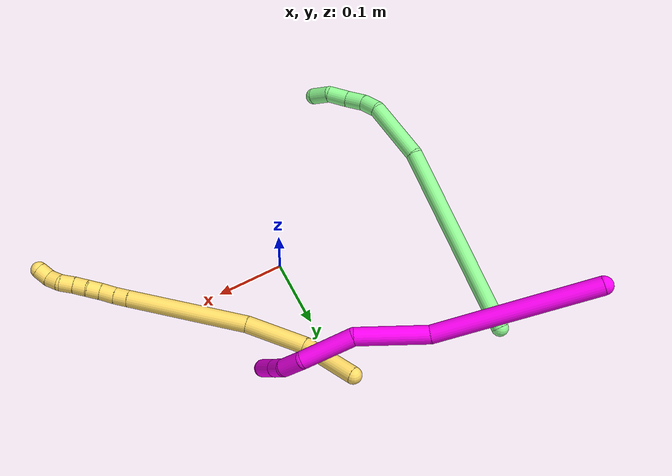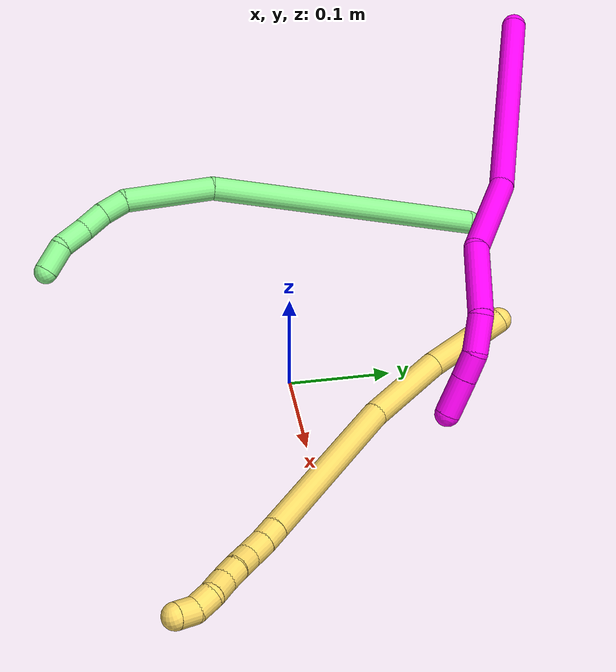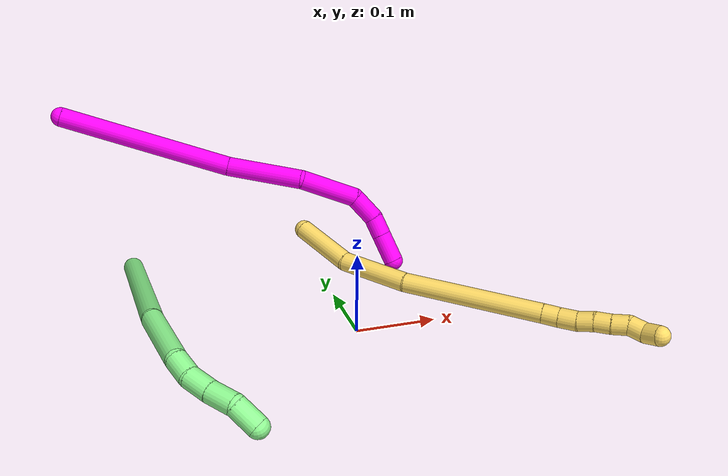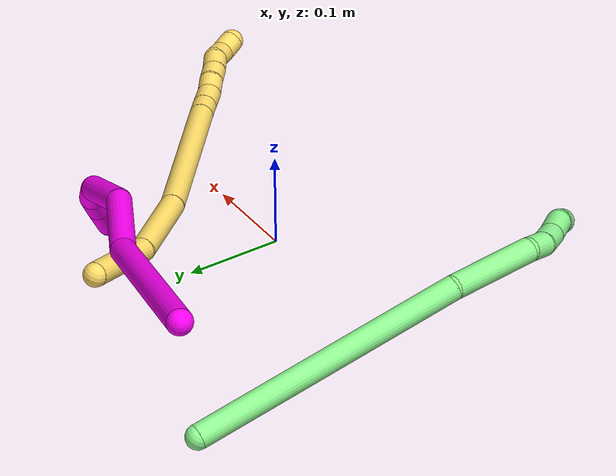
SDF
<sdf version="1.7">
 <world name="default">
  <model name="photoneo_s_sensor">
   <static>1</static>
   <pose>0 0 2 1.57079 1.57079 3.14159</pose>
   <link name="link">
    <inertial><mass>0.1</mass></inertial>
    <sensor name="sensor" type="depth">
     <update_rate>30</update_rate>
     <camera>
      <horizontal_fov>1.22</horizontal_fov>
      <image><width>1920</width><height>1200</height><format>B8G8R8</format></image>
      <clip><near>0.1</near><far>4</far></clip>
      <depth_camera><output>points</output></depth_camera>
     </camera>
     <plugin name="camera_plugin" filename="libgazebo_ros_depth_camera.so">
      <baseline>0.2</baseline>
      <alwaysOn>1</alwaysOn>
      <updateRate>0.0</updateRate>
      <cameraName>camera_ir</cameraName>
      <imageTopicName>/camera/color/image_raw</imageTopicName>
      <cameraInfoTopicName>/camera/color/camera_info</cameraInfoTopicName>
      <depthImageTopicName>/camera/depth/image_raw</depthImageTopicName>
      <depthImageCameraInfoTopicName>/camera/depth/camera_info</depthImageCameraInfoTopicName>
      <pointCloudTopicName>/camera/depth/points</pointCloudTopicName>
      <frameName>fr_optical</frameName>
      <pointCloudCutoff>0.1</pointCloudCutoff>
      <pointCloudCutoffMax>2.0</pointCloudCutoffMax>
      <distortionK1>0</distortionK1>
      <distortionK2>0</distortionK2>
      <distortionK3>0</distortionK3>
      <distortionT1>0</distortionT1>
      <distortionT2>0</distortionT2>
      <CxPrime>0</CxPrime>
      <Cx>0</Cx>
      <Cy>0</Cy>
      <focalLength>0</focalLength>
      <hackBaseline>0</hackBaseline>
     </plugin>
    </sensor>
   </link>
  </model>
  <model name="bin">
   <static>1</static>
   <link name="bottom">
    <collision name="collision-bottom">
     <pose>0 0 -0.01 0 -0 0</pose>
     <geometry><box><size>0.8 0.6 0.02</size></box></geometry>
     <surface>
      <friction><ode><mu>100</mu><mu2>100</mu2></ode></friction>
      <contact><collide_bitmask>65535</collide_bitmask></contact>
     </surface>
    </collision>
   </link>
   <link name="west_wall">
    <collision name="collision-west_wall">
     <pose>-0.41 0 0.1 0 -0 0</pose>
     <geometry><box><size>0.02 0.6 0.2</size></box></geometry>
     <surface>
      <friction><ode><mu>100</mu><mu2>100</mu2></ode></friction>
      <contact><collide_bitmask>65535</collide_bitmask></contact>
     </surface>
    </collision>
   </link>
   <link name="east_wall">
    <collision name="collision-east_wall">
     <pose>0.41 0 0.1 0 -0 0</pose>
     <geometry><box><size>0.02 0.6 0.2</size></box></geometry>
     <surface>
      <friction><ode><mu>100</mu><mu2>100</mu2></ode></friction>
      <contact><collide_bitmask>65535</collide_bitmask></contact>
     </surface>
    </collision>
   </link>
   <link name="south_wall">
    <collision name="collision-south_wall">
     <pose>0 -0.31 0.1 0 -0 0</pose>
     <geometry><box><size>0.8 0.02 0.2</size></box></geometry>
     <surface>
      <friction><ode><mu>100</mu><mu2>100</mu2></ode></friction>
      <contact><collide_bitmask>65535</collide_bitmask></contact>
     </surface>
    </collision>
   </link>
   <link name="north_wall">
    <collision name="collision-north_wall">
     <pose>0 0.31 0.1 0 -0 0</pose>
     <geometry><box><size>0.8 0.02 0.2</size></box></geometry>
     <surface>
      <friction><ode><mu>100</mu><mu2>100</mu2></ode></friction>
      <contact><collide_bitmask>65535</collide_bitmask></contact>
     </surface>
    </collision>
   </link>
  </model>
  <model name="5">
   <static>0</static>
   <link name="5">
    <collision name="collision-cylinder-e_1_1_4">
     <pose>0.041446 -0.006188 0.002234 1.22437 1.41338 1.08012</pose>
     <geometry><cylinder><radius>0.0125</radius><length>0.08393</length></cylinder></geometry>
     <surface>
      <friction><ode><mu>1.16</mu><mu2>1.16</mu2><slip1>0</slip1><slip2>0</slip2></ode></friction>
      <contact><ode><kp>1e+06</kp><kd>1</kd><max_vel>0</max_vel><min_depth>0.001</min_depth></ode></contact>
     </surface>
    </collision>
    <visual name="visual-cylinder-e_1_1_4">
     <pose>0.041446 -0.006188 0.002234 1.22437 1.41338 1.08012</pose>
     <geometry><cylinder><radius>0.0125</radius><length>0.08393</length></cylinder></geometry>
     <material><ambient>1 0.858824 0.4 1</ambient></material>
    </visual>
    <collision name="collision-cylinder-e_2_4_5">
     <pose>0.123958 -0.031607 0.0029 1.65214 1.13154 1.20646</pose>
     <geometry><cylinder><radius>0.0125</radius><length>0.090744</length></cylinder></geometry>
     <surface>
      <friction><ode><mu>1.16</mu><mu2>1.16</mu2><slip1>0</slip1><slip2>0</slip2></ode></friction>
      <contact><ode><kp>1e+06</kp><kd>1</kd><max_vel>0</max_vel><min_depth>0.001</min_depth></ode></contact>
     </surface>
    </collision>
    <visual name="visual-cylinder-e_2_4_5">
     <pose>0.123958 -0.031607 0.0029 1.65214 1.13154 1.20646</pose>
     <geometry><cylinder><radius>0.0125</radius><length>0.090744</length></cylinder></geometry>
     <material><ambient>1 0.858824 0.4 1</ambient></material>
    </visual>
    <collision name="collision-cylinder-e_3_5_6">
     <pose>0.239596 -0.101417 -0.000949 1.61586 0.974359 1.01212</pose>
     <geometry><cylinder><radius>0.0125</radius><length>0.180274</length></cylinder></geometry>
     <surface>
      <friction><ode><mu>1.16</mu><mu2>1.16</mu2><slip1>0</slip1><slip2>0</slip2></ode></friction>
      <contact><ode><kp>1e+06</kp><kd>1</kd><max_vel>0</max_vel><min_depth>0.001</min_depth></ode></contact>
     </surface>
    </collision>
    <visual name="visual-cylinder-e_3_5_6">
     <pose>0.239596 -0.101417 -0.000949 1.61586 0.974359 1.01212</pose>
     <geometry><cylinder><radius>0.0125</radius><length>0.180274</length></cylinder></geometry>
     <material><ambient>1 0.858824 0.4 1</ambient></material>
    </visual>
    <collision name="collision-cylinder-e_4_6_7">
     <pose>0.322702 -0.157588 -0.003372 1.59619 0.990437 1.01182</pose>
     <geometry><cylinder><radius>0.0125</radius><length>0.020404</length></cylinder></geometry>
     <surface>
      <friction><ode><mu>1.16</mu><mu2>1.16</mu2><slip1>0</slip1><slip2>0</slip2></ode></friction>
      <contact><ode><kp>1e+06</kp><kd>1</kd><max_vel>0</max_vel><min_depth>0.001</min_depth></ode></contact>
     </surface>
    </collision>
    <visual name="visual-cylinder-e_4_6_7">
     <pose>0.322702 -0.157588 -0.003372 1.59619 0.990437 1.01182</pose>
     <geometry><cylinder><radius>0.0125</radius><length>0.020404</length></cylinder></geometry>
     <material><ambient>1 0.858824 0.4 1</ambient></material>
    </visual>
    <collision name="collision-cylinder-e_5_7_8">
     <pose>0.340955 -0.169265 -0.004506 1.73251 1.0056 1.14844</pose>
     <geometry><cylinder><radius>0.0125</radius><length>0.023024</length></cylinder></geometry>
     <surface>
      <friction><ode><mu>1.16</mu><mu2>1.16</mu2><slip1>0</slip1><slip2>0</slip2></ode></friction>
      <contact><ode><kp>1e+06</kp><kd>1</kd><max_vel>0</max_vel><min_depth>0.001</min_depth></ode></contact>
     </surface>
    </collision>
    <visual name="visual-cylinder-e_5_7_8">
     <pose>0.340955 -0.169265 -0.004506 1.73251 1.0056 1.14844</pose>
     <geometry><cylinder><radius>0.0125</radius><length>0.023024</length></cylinder></geometry>
     <material><ambient>1 0.858824 0.4 1</ambient></material>
    </visual>
    <collision name="collision-cylinder-e_6_8_9">
     <pose>0.358252 -0.181845 -0.007608 1.88471 0.837173 1.09863</pose>
     <geometry><cylinder><radius>0.0125</radius><length>0.020398</length></cylinder></geometry>
     <surface>
      <friction><ode><mu>1.16</mu><mu2>1.16</mu2><slip1>0</slip1><slip2>0</slip2></ode></friction>
      <contact><ode><kp>1e+06</kp><kd>1</kd><max_vel>0</max_vel><min_depth>0.001</min_depth></ode></contact>
     </surface>
    </collision>
    <visual name="visual-cylinder-e_6_8_9">
     <pose>0.358252 -0.181845 -0.007608 1.88471 0.837173 1.09863</pose>
     <geometry><cylinder><radius>0.0125</radius><length>0.020398</length></cylinder></geometry>
     <material><ambient>1 0.858824 0.4 1</ambient></material>
    </visual>
    <collision name="collision-cylinder-e_7_9_10">
     <pose>0.373953 -0.194112 -0.010615 1.72521 0.947523 1.0789</pose>
     <geometry><cylinder><radius>0.0125</radius><length>0.020015</length></cylinder></geometry>
     <surface>
      <friction><ode><mu>1.16</mu><mu2>1.16</mu2><slip1>0</slip1><slip2>0</slip2></ode></friction>
      <contact><ode><kp>1e+06</kp><kd>1</kd><max_vel>0</max_vel><min_depth>0.001</min_depth></ode></contact>
     </surface>
    </collision>
    <visual name="visual-cylinder-e_7_9_10">
     <pose>0.373953 -0.194112 -0.010615 1.72521 0.947523 1.0789</pose>
     <geometry><cylinder><radius>0.0125</radius><length>0.020015</length></cylinder></geometry>
     <material><ambient>1 0.858824 0.4 1</ambient></material>
    </visual>
    <collision name="collision-cylinder-e_8_10_11">
     <pose>0.389785 -0.206754 -0.012829 1.76011 0.833778 0.983685</pose>
     <geometry><cylinder><radius>0.0125</radius><length>0.020815</length></cylinder></geometry>
     <surface>
      <friction><ode><mu>1.16</mu><mu2>1.16</mu2><slip1>0</slip1><slip2>0</slip2></ode></friction>
      <contact><ode><kp>1e+06</kp><kd>1</kd><max_vel>0</max_vel><min_depth>0.001</min_depth></ode></contact>
     </surface>
    </collision>
    <visual name="visual-cylinder-e_8_10_11">
     <pose>0.389785 -0.206754 -0.012829 1.76011 0.833778 0.983685</pose>
     <geometry><cylinder><radius>0.0125</radius><length>0.020815</length></cylinder></geometry>
     <material><ambient>1 0.858824 0.4 1</ambient></material>
    </visual>
    <collision name="collision-cylinder-e_9_11_12">
     <pose>0.407048 -0.217066 -0.013552 1.39998 1.2203 1.06439</pose>
     <geometry><cylinder><radius>0.0125</radius><length>0.020349</length></cylinder></geometry>
     <surface>
      <friction><ode><mu>1.16</mu><mu2>1.16</mu2><slip1>0</slip1><slip2>0</slip2></ode></friction>
      <contact><ode><kp>1e+06</kp><kd>1</kd><max_vel>0</max_vel><min_depth>0.001</min_depth></ode></contact>
     </surface>
    </collision>
    <visual name="visual-cylinder-e_9_11_12">
     <pose>0.407048 -0.217066 -0.013552 1.39998 1.2203 1.06439</pose>
     <geometry><cylinder><radius>0.0125</radius><length>0.020349</length></cylinder></geometry>
     <material><ambient>1 0.858824 0.4 1</ambient></material>
    </visual>
    <collision name="collision-cylinder-e_10_12_2">
     <pose>0.425629 -0.223038 -0.016512 2.52316 1.1206 2.19961</pose>
     <geometry><cylinder><radius>0.0125</radius><length>0.020047</length></cylinder></geometry>
     <surface>
      <friction><ode><mu>1.16</mu><mu2>1.16</mu2><slip1>0</slip1><slip2>0</slip2></ode></friction>
      <contact><ode><kp>1e+06</kp><kd>1</kd><max_vel>0</max_vel><min_depth>0.001</min_depth></ode></contact>
     </surface>
    </collision>
    <visual name="visual-cylinder-e_10_12_2">
     <pose>0.425629 -0.223038 -0.016512 2.52316 1.1206 2.19961</pose>
     <geometry><cylinder><radius>0.0125</radius><length>0.020047</length></cylinder></geometry>
     <material><ambient>1 0.858824 0.4 1</ambient></material>
    </visual>
    <collision name="collision-sphere-2">
     <pose>0.434653 -0.225566 -0.020066 0 -0 0</pose>
     <geometry><sphere><radius>0.0125</radius></sphere></geometry>
     <surface>
      <friction><ode><mu>1.16</mu><mu2>1.16</mu2><slip1>0</slip1><slip2>0</slip2></ode></friction>
      <contact><ode><kp>1e+06</kp><kd>1</kd><max_vel>0</max_vel><min_depth>0.001</min_depth></ode></contact>
     </surface>
    </collision>
    <visual name="visual-sphere-2">
     <pose>0.434653 -0.225566 -0.020066 0 -0 0</pose>
     <geometry><sphere><radius>0.0125</radius></sphere></geometry>
     <material><ambient>1 0.858824 0.4 1</ambient></material>
    </visual>
    <collision name="collision-sphere-12">
     <pose>0.416604 -0.220509 -0.012958 0 -0 0</pose>
     <geometry><sphere><radius>0.0125</radius></sphere></geometry>
     <surface>
      <friction><ode><mu>1.16</mu><mu2>1.16</mu2><slip1>0</slip1><slip2>0</slip2></ode></friction>
      <contact><ode><kp>1e+06</kp><kd>1</kd><max_vel>0</max_vel><min_depth>0.001</min_depth></ode></contact>
     </surface>
    </collision>
    <visual name="visual-sphere-12">
     <pose>0.416604 -0.220509 -0.012958 0 -0 0</pose>
     <geometry><sphere><radius>0.0125</radius></sphere></geometry>
     <material><ambient>1 0.858824 0.4 1</ambient></material>
    </visual>
    <collision name="collision-sphere-11">
     <pose>0.397492 -0.213623 -0.014146 0 -0 0</pose>
     <geometry><sphere><radius>0.0125</radius></sphere></geometry>
     <surface>
      <friction><ode><mu>1.16</mu><mu2>1.16</mu2><slip1>0</slip1><slip2>0</slip2></ode></friction>
      <contact><ode><kp>1e+06</kp><kd>1</kd><max_vel>0</max_vel><min_depth>0.001</min_depth></ode></contact>
     </surface>
    </collision>
    <visual name="visual-sphere-11">
     <pose>0.397492 -0.213623 -0.014146 0 -0 0</pose>
     <geometry><sphere><radius>0.0125</radius></sphere></geometry>
     <material><ambient>1 0.858824 0.4 1</ambient></material>
    </visual>
    <collision name="collision-sphere-10">
     <pose>0.382079 -0.199884 -0.011513 0 -0 0</pose>
     <geometry><sphere><radius>0.0125</radius></sphere></geometry>
     <surface>
      <friction><ode><mu>1.16</mu><mu2>1.16</mu2><slip1>0</slip1><slip2>0</slip2></ode></friction>
      <contact><ode><kp>1e+06</kp><kd>1</kd><max_vel>0</max_vel><min_depth>0.001</min_depth></ode></contact>
     </surface>
    </collision>
    <visual name="visual-sphere-10">
     <pose>0.382079 -0.199884 -0.011513 0 -0 0</pose>
     <geometry><sphere><radius>0.0125</radius></sphere></geometry>
     <material><ambient>1 0.858824 0.4 1</ambient></material>
    </visual>
    <collision name="collision-sphere-9">
     <pose>0.365827 -0.18834 -0.009716 0 -0 0</pose>
     <geometry><sphere><radius>0.0125</radius></sphere></geometry>
     <surface>
      <friction><ode><mu>1.16</mu><mu2>1.16</mu2><slip1>0</slip1><slip2>0</slip2></ode></friction>
      <contact><ode><kp>1e+06</kp><kd>1</kd><max_vel>0</max_vel><min_depth>0.001</min_depth></ode></contact>
     </surface>
    </collision>
    <visual name="visual-sphere-9">
     <pose>0.365827 -0.18834 -0.009716 0 -0 0</pose>
     <geometry><sphere><radius>0.0125</radius></sphere></geometry>
     <material><ambient>1 0.858824 0.4 1</ambient></material>
    </visual>
    <collision name="collision-sphere-4">
     <pose>0.082893 -0.012376 0.004467 0 -0 0</pose>
     <geometry><sphere><radius>0.0125</radius></sphere></geometry>
     <surface>
      <friction><ode><mu>1.16</mu><mu2>1.16</mu2><slip1>0</slip1><slip2>0</slip2></ode></friction>
      <contact><ode><kp>1e+06</kp><kd>1</kd><max_vel>0</max_vel><min_depth>0.001</min_depth></ode></contact>
     </surface>
    </collision>
    <visual name="visual-sphere-4">
     <pose>0.082893 -0.012376 0.004467 0 -0 0</pose>
     <geometry><sphere><radius>0.0125</radius></sphere></geometry>
     <material><ambient>1 0.858824 0.4 1</ambient></material>
    </visual>
    <collision name="collision-sphere-1">
     <geometry><sphere><radius>0.0125</radius></sphere></geometry>
     <surface>
      <friction><ode><mu>1.16</mu><mu2>1.16</mu2><slip1>0</slip1><slip2>0</slip2></ode></friction>
      <contact><ode><kp>1e+06</kp><kd>1</kd><max_vel>0</max_vel><min_depth>0.001</min_depth></ode></contact>
     </surface>
    </collision>
    <visual name="visual-sphere-1">
     <geometry><sphere><radius>0.0125</radius></sphere></geometry>
     <material><ambient>1 0.858824 0.4 1</ambient></material>
    </visual>
    <collision name="collision-sphere-8">
     <pose>0.350677 -0.17535 -0.005499 0 -0 0</pose>
     <geometry><sphere><radius>0.0125</radius></sphere></geometry>
     <surface>
      <friction><ode><mu>1.16</mu><mu2>1.16</mu2><slip1>0</slip1><slip2>0</slip2></ode></friction>
      <contact><ode><kp>1e+06</kp><kd>1</kd><max_vel>0</max_vel><min_depth>0.001</min_depth></ode></contact>
     </surface>
    </collision>
    <visual name="visual-sphere-8">
     <pose>0.350677 -0.17535 -0.005499 0 -0 0</pose>
     <geometry><sphere><radius>0.0125</radius></sphere></geometry>
     <material><ambient>1 0.858824 0.4 1</ambient></material>
    </visual>
    <collision name="collision-sphere-5">
     <pose>0.165022 -0.050839 0.001332 0 -0 0</pose>
     <geometry><sphere><radius>0.0125</radius></sphere></geometry>
     <surface>
      <friction><ode><mu>1.16</mu><mu2>1.16</mu2><slip1>0</slip1><slip2>0</slip2></ode></friction>
      <contact><ode><kp>1e+06</kp><kd>1</kd><max_vel>0</max_vel><min_depth>0.001</min_depth></ode></contact>
     </surface>
    </collision>
    <visual name="visual-sphere-5">
     <pose>0.165022 -0.050839 0.001332 0 -0 0</pose>
     <geometry><sphere><radius>0.0125</radius></sphere></geometry>
     <material><ambient>1 0.858824 0.4 1</ambient></material>
    </visual>
    <collision name="collision-sphere-6">
     <pose>0.31417 -0.151996 -0.00323 0 -0 0</pose>
     <geometry><sphere><radius>0.0125</radius></sphere></geometry>
     <surface>
      <friction><ode><mu>1.16</mu><mu2>1.16</mu2><slip1>0</slip1><slip2>0</slip2></ode></friction>
      <contact><ode><kp>1e+06</kp><kd>1</kd><max_vel>0</max_vel><min_depth>0.001</min_depth></ode></contact>
     </surface>
    </collision>
    <visual name="visual-sphere-6">
     <pose>0.31417 -0.151996 -0.00323 0 -0 0</pose>
     <geometry><sphere><radius>0.0125</radius></sphere></geometry>
     <material><ambient>1 0.858824 0.4 1</ambient></material>
    </visual>
    <collision name="collision-sphere-7">
     <pose>0.331234 -0.16318 -0.003514 0 -0 0</pose>
     <geometry><sphere><radius>0.0125</radius></sphere></geometry>
     <surface>
      <friction><ode><mu>1.16</mu><mu2>1.16</mu2><slip1>0</slip1><slip2>0</slip2></ode></friction>
      <contact><ode><kp>1e+06</kp><kd>1</kd><max_vel>0</max_vel><min_depth>0.001</min_depth></ode></contact>
     </surface>
    </collision>
    <visual name="visual-sphere-7">
     <pose>0.331234 -0.16318 -0.003514 0 -0 0</pose>
     <geometry><sphere><radius>0.0125</radius></sphere></geometry>
     <material><ambient>1 0.858824 0.4 1</ambient></material>
    </visual>
    <inertial>
     <pose>0.224151 -0.099139 -0.002269 0 -0 0</pose>
     <mass>0.5</mass>
     <inertia>
      <ixx>0.000472</ixx>
      <ixy>0</ixy>
      <ixz>0</ixz>
      <iyy>0.000705</iyy>
      <iyz>0</iyz>
      <izz>-0.000213</izz>
     </inertia>
    </inertial>
   </link>
   <pose>-0.007108 0.210838 0.047135 -2.92119 0.221707 -1.28641</pose>
  </model>
  <model name="10">
   <static>0</static>
   <link name="10">
    <collision name="collision-cylinder-e_1_1_4">
     <pose>0.022757 -0.000858 -0.109541 3.13376 0.204832 3.06538</pose>
     <geometry><cylinder><radius>0.0125</radius><length>0.223766</length></cylinder></geometry>
     <surface>
      <friction><ode><mu>1.16</mu><mu2>1.16</mu2><slip1>0</slip1><slip2>0</slip2></ode></friction>
      <contact><ode><kp>1e+06</kp><kd>1</kd><max_vel>0</max_vel><min_depth>0.001</min_depth></ode></contact>
     </surface>
    </collision>
    <visual name="visual-cylinder-e_1_1_4">
     <pose>0.022757 -0.000858 -0.109541 3.13376 0.204832 3.06538</pose>
     <geometry><cylinder><radius>0.0125</radius><length>0.223766</length></cylinder></geometry>
     <material><ambient>1 0 0.964706 1</ambient></material>
    </visual>
    <collision name="collision-cylinder-e_2_4_5">
     <pose>0.055901 -0.015525 -0.265465 2.85225 0.211421 1.25894</pose>
     <geometry><cylinder><radius>0.0125</radius><length>0.098995</length></cylinder></geometry>
     <surface>
      <friction><ode><mu>1.16</mu><mu2>1.16</mu2><slip1>0</slip1><slip2>0</slip2></ode></friction>
      <contact><ode><kp>1e+06</kp><kd>1</kd><max_vel>0</max_vel><min_depth>0.001</min_depth></ode></contact>
     </surface>
    </collision>
    <visual name="visual-cylinder-e_2_4_5">
     <pose>0.055901 -0.015525 -0.265465 2.85225 0.211421 1.25894</pose>
     <geometry><cylinder><radius>0.0125</radius><length>0.098995</length></cylinder></geometry>
     <material><ambient>1 0 0.964706 1</ambient></material>
    </visual>
    <collision name="collision-cylinder-e_3_5_6">
     <pose>0.074536 -0.024002 -0.348588 -2.99748 0.218603 -1.97801</pose>
     <geometry><cylinder><radius>0.0125</radius><length>0.076059</length></cylinder></geometry>
     <surface>
      <friction><ode><mu>1.16</mu><mu2>1.16</mu2><slip1>0</slip1><slip2>0</slip2></ode></friction>
      <contact><ode><kp>1e+06</kp><kd>1</kd><max_vel>0</max_vel><min_depth>0.001</min_depth></ode></contact>
     </surface>
    </collision>
    <visual name="visual-cylinder-e_3_5_6">
     <pose>0.074536 -0.024002 -0.348588 -2.99748 0.218603 -1.97801</pose>
     <geometry><cylinder><radius>0.0125</radius><length>0.076059</length></cylinder></geometry>
     <material><ambient>1 0 0.964706 1</ambient></material>
    </visual>
    <collision name="collision-cylinder-e_4_6_7">
     <pose>0.078202 -0.01387 -0.402734 -2.87248 -0.248485 1.49022</pose>
     <geometry><cylinder><radius>0.0125</radius><length>0.037258</length></cylinder></geometry>
     <surface>
      <friction><ode><mu>1.16</mu><mu2>1.16</mu2><slip1>0</slip1><slip2>0</slip2></ode></friction>
      <contact><ode><kp>1e+06</kp><kd>1</kd><max_vel>0</max_vel><min_depth>0.001</min_depth></ode></contact>
     </surface>
    </collision>
    <visual name="visual-cylinder-e_4_6_7">
     <pose>0.078202 -0.01387 -0.402734 -2.87248 -0.248485 1.49022</pose>
     <geometry><cylinder><radius>0.0125</radius><length>0.037258</length></cylinder></geometry>
     <material><ambient>1 0 0.964706 1</ambient></material>
    </visual>
    <collision name="collision-cylinder-e_5_7_8">
     <pose>0.066085 -0.006733 -0.430447 -2.91876 -0.619431 2.46895</pose>
     <geometry><cylinder><radius>0.0125</radius><length>0.025956</length></cylinder></geometry>
     <surface>
      <friction><ode><mu>1.16</mu><mu2>1.16</mu2><slip1>0</slip1><slip2>0</slip2></ode></friction>
      <contact><ode><kp>1e+06</kp><kd>1</kd><max_vel>0</max_vel><min_depth>0.001</min_depth></ode></contact>
     </surface>
    </collision>
    <visual name="visual-cylinder-e_5_7_8">
     <pose>0.066085 -0.006733 -0.430447 -2.91876 -0.619431 2.46895</pose>
     <geometry><cylinder><radius>0.0125</radius><length>0.025956</length></cylinder></geometry>
     <material><ambient>1 0 0.964706 1</ambient></material>
    </visual>
    <collision name="collision-cylinder-e_6_8_2">
     <pose>0.047379 -0.001342 -0.455793 -2.94111 -0.629186 2.54203</pose>
     <geometry><cylinder><radius>0.0125</radius><length>0.037967</length></cylinder></geometry>
     <surface>
      <friction><ode><mu>1.16</mu><mu2>1.16</mu2><slip1>0</slip1><slip2>0</slip2></ode></friction>
      <contact><ode><kp>1e+06</kp><kd>1</kd><max_vel>0</max_vel><min_depth>0.001</min_depth></ode></contact>
     </surface>
    </collision>
    <visual name="visual-cylinder-e_6_8_2">
     <pose>0.047379 -0.001342 -0.455793 -2.94111 -0.629186 2.54203</pose>
     <geometry><cylinder><radius>0.0125</radius><length>0.037967</length></cylinder></geometry>
     <material><ambient>1 0 0.964706 1</ambient></material>
    </visual>
    <collision name="collision-sphere-2">
     <pose>0.036208 0.001715 -0.470834 0 -0 0</pose>
     <geometry><sphere><radius>0.0125</radius></sphere></geometry>
     <surface>
      <friction><ode><mu>1.16</mu><mu2>1.16</mu2><slip1>0</slip1><slip2>0</slip2></ode></friction>
      <contact><ode><kp>1e+06</kp><kd>1</kd><max_vel>0</max_vel><min_depth>0.001</min_depth></ode></contact>
     </surface>
    </collision>
    <visual name="visual-sphere-2">
     <pose>0.036208 0.001715 -0.470834 0 -0 0</pose>
     <geometry><sphere><radius>0.0125</radius></sphere></geometry>
     <material><ambient>1 0 0.964706 1</ambient></material>
    </visual>
    <collision name="collision-sphere-4">
     <pose>0.045514 -0.001717 -0.219081 0 -0 0</pose>
     <geometry><sphere><radius>0.0125</radius></sphere></geometry>
     <surface>
      <friction><ode><mu>1.16</mu><mu2>1.16</mu2><slip1>0</slip1><slip2>0</slip2></ode></friction>
      <contact><ode><kp>1e+06</kp><kd>1</kd><max_vel>0</max_vel><min_depth>0.001</min_depth></ode></contact>
     </surface>
    </collision>
    <visual name="visual-sphere-4">
     <pose>0.045514 -0.001717 -0.219081 0 -0 0</pose>
     <geometry><sphere><radius>0.0125</radius></sphere></geometry>
     <material><ambient>1 0 0.964706 1</ambient></material>
    </visual>
    <collision name="collision-sphere-1">
     <geometry><sphere><radius>0.0125</radius></sphere></geometry>
     <surface>
      <friction><ode><mu>1.16</mu><mu2>1.16</mu2><slip1>0</slip1><slip2>0</slip2></ode></friction>
      <contact><ode><kp>1e+06</kp><kd>1</kd><max_vel>0</max_vel><min_depth>0.001</min_depth></ode></contact>
     </surface>
    </collision>
    <visual name="visual-sphere-1">
     <geometry><sphere><radius>0.0125</radius></sphere></geometry>
     <material><ambient>1 0 0.964706 1</ambient></material>
    </visual>
    <collision name="collision-sphere-8">
     <pose>0.058551 -0.004398 -0.440752 0 -0 0</pose>
     <geometry><sphere><radius>0.0125</radius></sphere></geometry>
     <surface>
      <friction><ode><mu>1.16</mu><mu2>1.16</mu2><slip1>0</slip1><slip2>0</slip2></ode></friction>
      <contact><ode><kp>1e+06</kp><kd>1</kd><max_vel>0</max_vel><min_depth>0.001</min_depth></ode></contact>
     </surface>
    </collision>
    <visual name="visual-sphere-8">
     <pose>0.058551 -0.004398 -0.440752 0 -0 0</pose>
     <geometry><sphere><radius>0.0125</radius></sphere></geometry>
     <material><ambient>1 0 0.964706 1</ambient></material>
    </visual>
    <collision name="collision-sphere-5">
     <pose>0.066288 -0.029333 -0.311849 0 -0 0</pose>
     <geometry><sphere><radius>0.0125</radius></sphere></geometry>
     <surface>
      <friction><ode><mu>1.16</mu><mu2>1.16</mu2><slip1>0</slip1><slip2>0</slip2></ode></friction>
      <contact><ode><kp>1e+06</kp><kd>1</kd><max_vel>0</max_vel><min_depth>0.001</min_depth></ode></contact>
     </surface>
    </collision>
    <visual name="visual-sphere-5">
     <pose>0.066288 -0.029333 -0.311849 0 -0 0</pose>
     <geometry><sphere><radius>0.0125</radius></sphere></geometry>
     <material><ambient>1 0 0.964706 1</ambient></material>
    </visual>
    <collision name="collision-sphere-6">
     <pose>0.082783 -0.01867 -0.385328 0 -0 0</pose>
     <geometry><sphere><radius>0.0125</radius></sphere></geometry>
     <surface>
      <friction><ode><mu>1.16</mu><mu2>1.16</mu2><slip1>0</slip1><slip2>0</slip2></ode></friction>
      <contact><ode><kp>1e+06</kp><kd>1</kd><max_vel>0</max_vel><min_depth>0.001</min_depth></ode></contact>
     </surface>
    </collision>
    <visual name="visual-sphere-6">
     <pose>0.082783 -0.01867 -0.385328 0 -0 0</pose>
     <geometry><sphere><radius>0.0125</radius></sphere></geometry>
     <material><ambient>1 0 0.964706 1</ambient></material>
    </visual>
    <collision name="collision-sphere-7">
     <pose>0.07362 -0.009069 -0.420141 0 -0 0</pose>
     <geometry><sphere><radius>0.0125</radius></sphere></geometry>
     <surface>
      <friction><ode><mu>1.16</mu><mu2>1.16</mu2><slip1>0</slip1><slip2>0</slip2></ode></friction>
      <contact><ode><kp>1e+06</kp><kd>1</kd><max_vel>0</max_vel><min_depth>0.001</min_depth></ode></contact>
     </surface>
    </collision>
    <visual name="visual-sphere-7">
     <pose>0.07362 -0.009069 -0.420141 0 -0 0</pose>
     <geometry><sphere><radius>0.0125</radius></sphere></geometry>
     <material><ambient>1 0 0.964706 1</ambient></material>
    </visual>
    <inertial>
     <pose>0.045446 -0.008594 -0.241574 0 -0 0</pose>
     <mass>0.5</mass>
     <inertia>
      <ixx>-0.000789</ixx>
      <ixy>0</ixy>
      <ixz>0</ixz>
      <iyy>0.001067</iyy>
      <iyz>0</iyz>
      <izz>-0.000226</izz>
     </inertia>
    </inertial>
   </link>
   <pose>-0.307338 0.293089 0.210321 -0.935819 -0.700886 0.696271</pose>
  </model>
  <model name="13">
   <static>0</static>
   <link name="13">
    <collision name="collision-cylinder-e_1_1_4">
     <pose>-0.033675 -0.114591 0.079102 0.966611 -0.237291 -0.12496</pose>
     <geometry><cylinder><radius>0.0125</radius><length>0.286511</length></cylinder></geometry>
     <surface>
      <friction><ode><mu>1.16</mu><mu2>1.16</mu2><slip1>0</slip1><slip2>0</slip2></ode></friction>
      <contact><ode><kp>1e+06</kp><kd>1</kd><max_vel>0</max_vel><min_depth>0.001</min_depth></ode></contact>
     </surface>
    </collision>
    <visual name="visual-cylinder-e_1_1_4">
     <pose>-0.033675 -0.114591 0.079102 0.966611 -0.237291 -0.12496</pose>
     <geometry><cylinder><radius>0.0125</radius><length>0.286511</length></cylinder></geometry>
     <material><ambient>0.564706 0.984314 0.572549 1</ambient></material>
    </visual>
    <collision name="collision-cylinder-e_2_4_5">
     <pose>-0.076807 -0.273166 0.173426 1.23761 -0.200435 -0.142968</pose>
     <geometry><cylinder><radius>0.0125</radius><length>0.094991</length></cylinder></geometry>
     <surface>
      <friction><ode><mu>1.16</mu><mu2>1.16</mu2><slip1>0</slip1><slip2>0</slip2></ode></friction>
      <contact><ode><kp>1e+06</kp><kd>1</kd><max_vel>0</max_vel><min_depth>0.001</min_depth></ode></contact>
     </surface>
    </collision>
    <visual name="visual-cylinder-e_2_4_5">
     <pose>-0.076807 -0.273166 0.173426 1.23761 -0.200435 -0.142968</pose>
     <geometry><cylinder><radius>0.0125</radius><length>0.094991</length></cylinder></geometry>
     <material><ambient>0.564706 0.984314 0.572549 1</ambient></material>
    </visual>
    <collision name="collision-cylinder-e_3_5_6">
     <pose>-0.087513 -0.330717 0.188074 1.61312 -0.091849 -0.095816</pose>
     <geometry><cylinder><radius>0.0125</radius><length>0.02727</length></cylinder></geometry>
     <surface>
      <friction><ode><mu>1.16</mu><mu2>1.16</mu2><slip1>0</slip1><slip2>0</slip2></ode></friction>
      <contact><ode><kp>1e+06</kp><kd>1</kd><max_vel>0</max_vel><min_depth>0.001</min_depth></ode></contact>
     </surface>
    </collision>
    <visual name="visual-cylinder-e_3_5_6">
     <pose>-0.087513 -0.330717 0.188074 1.61312 -0.091849 -0.095816</pose>
     <geometry><cylinder><radius>0.0125</radius><length>0.02727</length></cylinder></geometry>
     <material><ambient>0.564706 0.984314 0.572549 1</ambient></material>
    </visual>
    <collision name="collision-cylinder-e_4_6_7">
     <pose>-0.086156 -0.358253 0.185717 1.69772 0.183123 0.207808</pose>
     <geometry><cylinder><radius>0.0125</radius><length>0.028647</length></cylinder></geometry>
     <surface>
      <friction><ode><mu>1.16</mu><mu2>1.16</mu2><slip1>0</slip1><slip2>0</slip2></ode></friction>
      <contact><ode><kp>1e+06</kp><kd>1</kd><max_vel>0</max_vel><min_depth>0.001</min_depth></ode></contact>
     </surface>
    </collision>
    <visual name="visual-cylinder-e_4_6_7">
     <pose>-0.086156 -0.358253 0.185717 1.69772 0.183123 0.207808</pose>
     <geometry><cylinder><radius>0.0125</radius><length>0.028647</length></cylinder></geometry>
     <material><ambient>0.564706 0.984314 0.572549 1</ambient></material>
    </visual>
    <collision name="collision-cylinder-e_5_7_8">
     <pose>-0.079389 -0.387371 0.183354 1.60908 0.267731 0.27805</pose>
     <geometry><cylinder><radius>0.0125</radius><length>0.031436</length></cylinder></geometry>
     <surface>
      <friction><ode><mu>1.16</mu><mu2>1.16</mu2><slip1>0</slip1><slip2>0</slip2></ode></friction>
      <contact><ode><kp>1e+06</kp><kd>1</kd><max_vel>0</max_vel><min_depth>0.001</min_depth></ode></contact>
     </surface>
    </collision>
    <visual name="visual-cylinder-e_5_7_8">
     <pose>-0.079389 -0.387371 0.183354 1.60908 0.267731 0.27805</pose>
     <geometry><cylinder><radius>0.0125</radius><length>0.031436</length></cylinder></geometry>
     <material><ambient>0.564706 0.984314 0.572549 1</ambient></material>
    </visual>
    <collision name="collision-cylinder-e_6_8_2">
     <pose>-0.073285 -0.416246 0.175685 2.04743 0.125273 0.205216</pose>
     <geometry><cylinder><radius>0.0125</radius><length>0.031145</length></cylinder></geometry>
     <surface>
      <friction><ode><mu>1.16</mu><mu2>1.16</mu2><slip1>0</slip1><slip2>0</slip2></ode></friction>
      <contact><ode><kp>1e+06</kp><kd>1</kd><max_vel>0</max_vel><min_depth>0.001</min_depth></ode></contact>
     </surface>
    </collision>
    <visual name="visual-cylinder-e_6_8_2">
     <pose>-0.073285 -0.416246 0.175685 2.04743 0.125273 0.205216</pose>
     <geometry><cylinder><radius>0.0125</radius><length>0.031145</length></cylinder></geometry>
     <material><ambient>0.564706 0.984314 0.572549 1</ambient></material>
    </visual>
    <collision name="collision-sphere-2">
     <pose>-0.07134 -0.429974 0.168596 0 -0 0</pose>
     <geometry><sphere><radius>0.0125</radius></sphere></geometry>
     <surface>
      <friction><ode><mu>1.16</mu><mu2>1.16</mu2><slip1>0</slip1><slip2>0</slip2></ode></friction>
      <contact><ode><kp>1e+06</kp><kd>1</kd><max_vel>0</max_vel><min_depth>0.001</min_depth></ode></contact>
     </surface>
    </collision>
    <visual name="visual-sphere-2">
     <pose>-0.07134 -0.429974 0.168596 0 -0 0</pose>
     <geometry><sphere><radius>0.0125</radius></sphere></geometry>
     <material><ambient>0.564706 0.984314 0.572549 1</ambient></material>
    </visual>
    <collision name="collision-sphere-4">
     <pose>-0.06735 -0.229181 0.158204 0 -0 0</pose>
     <geometry><sphere><radius>0.0125</radius></sphere></geometry>
     <surface>
      <friction><ode><mu>1.16</mu><mu2>1.16</mu2><slip1>0</slip1><slip2>0</slip2></ode></friction>
      <contact><ode><kp>1e+06</kp><kd>1</kd><max_vel>0</max_vel><min_depth>0.001</min_depth></ode></contact>
     </surface>
    </collision>
    <visual name="visual-sphere-4">
     <pose>-0.06735 -0.229181 0.158204 0 -0 0</pose>
     <geometry><sphere><radius>0.0125</radius></sphere></geometry>
     <material><ambient>0.564706 0.984314 0.572549 1</ambient></material>
    </visual>
    <collision name="collision-sphere-1">
     <geometry><sphere><radius>0.0125</radius></sphere></geometry>
     <surface>
      <friction><ode><mu>1.16</mu><mu2>1.16</mu2><slip1>0</slip1><slip2>0</slip2></ode></friction>
      <contact><ode><kp>1e+06</kp><kd>1</kd><max_vel>0</max_vel><min_depth>0.001</min_depth></ode></contact>
     </surface>
    </collision>
    <visual name="visual-sphere-1">
     <geometry><sphere><radius>0.0125</radius></sphere></geometry>
     <material><ambient>0.564706 0.984314 0.572549 1</ambient></material>
    </visual>
    <collision name="collision-sphere-8">
     <pose>-0.075231 -0.402517 0.182774 0 -0 0</pose>
     <geometry><sphere><radius>0.0125</radius></sphere></geometry>
     <surface>
      <friction><ode><mu>1.16</mu><mu2>1.16</mu2><slip1>0</slip1><slip2>0</slip2></ode></friction>
      <contact><ode><kp>1e+06</kp><kd>1</kd><max_vel>0</max_vel><min_depth>0.001</min_depth></ode></contact>
     </surface>
    </collision>
    <visual name="visual-sphere-8">
     <pose>-0.075231 -0.402517 0.182774 0 -0 0</pose>
     <geometry><sphere><radius>0.0125</radius></sphere></geometry>
     <material><ambient>0.564706 0.984314 0.572549 1</ambient></material>
    </visual>
    <collision name="collision-sphere-5">
     <pose>-0.086263 -0.317151 0.188648 0 -0 0</pose>
     <geometry><sphere><radius>0.0125</radius></sphere></geometry>
     <surface>
      <friction><ode><mu>1.16</mu><mu2>1.16</mu2><slip1>0</slip1><slip2>0</slip2></ode></friction>
      <contact><ode><kp>1e+06</kp><kd>1</kd><max_vel>0</max_vel><min_depth>0.001</min_depth></ode></contact>
     </surface>
    </collision>
    <visual name="visual-sphere-5">
     <pose>-0.086263 -0.317151 0.188648 0 -0 0</pose>
     <geometry><sphere><radius>0.0125</radius></sphere></geometry>
     <material><ambient>0.564706 0.984314 0.572549 1</ambient></material>
    </visual>
    <collision name="collision-sphere-6">
     <pose>-0.088764 -0.344282 0.187499 0 -0 0</pose>
     <geometry><sphere><radius>0.0125</radius></sphere></geometry>
     <surface>
      <friction><ode><mu>1.16</mu><mu2>1.16</mu2><slip1>0</slip1><slip2>0</slip2></ode></friction>
      <contact><ode><kp>1e+06</kp><kd>1</kd><max_vel>0</max_vel><min_depth>0.001</min_depth></ode></contact>
     </surface>
    </collision>
    <visual name="visual-sphere-6">
     <pose>-0.088764 -0.344282 0.187499 0 -0 0</pose>
     <geometry><sphere><radius>0.0125</radius></sphere></geometry>
     <material><ambient>0.564706 0.984314 0.572549 1</ambient></material>
    </visual>
    <collision name="collision-sphere-7">
     <pose>-0.083547 -0.372224 0.183934 0 -0 0</pose>
     <geometry><sphere><radius>0.0125</radius></sphere></geometry>
     <surface>
      <friction><ode><mu>1.16</mu><mu2>1.16</mu2><slip1>0</slip1><slip2>0</slip2></ode></friction>
      <contact><ode><kp>1e+06</kp><kd>1</kd><max_vel>0</max_vel><min_depth>0.001</min_depth></ode></contact>
     </surface>
    </collision>
    <visual name="visual-sphere-7">
     <pose>-0.083547 -0.372224 0.183934 0 -0 0</pose>
     <geometry><sphere><radius>0.0125</radius></sphere></geometry>
     <material><ambient>0.564706 0.984314 0.572549 1</ambient></material>
    </visual>
    <inertial>
     <pose>-0.053154 -0.206405 0.121644 0 -0 0</pose>
     <mass>0.5</mass>
     <inertia>
      <ixx>0.001734</ixx>
      <ixy>0</ixy>
      <ixz>0</ixz>
      <iyy>0.000902</iyy>
      <iyz>0</iyz>
      <izz>0.002149</izz>
     </inertia>
    </inertial>
   </link>
   <pose>-0.236827 0.236639 0.011497 0.242947 -0.388971 0.324601</pose>
  </model>
 </world>
</sdf>
